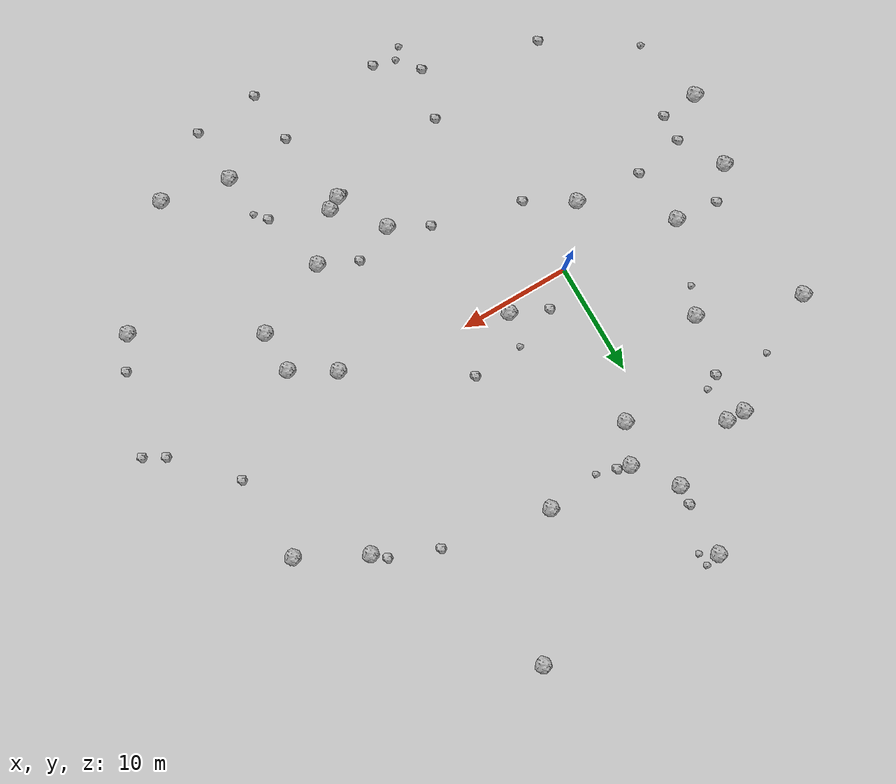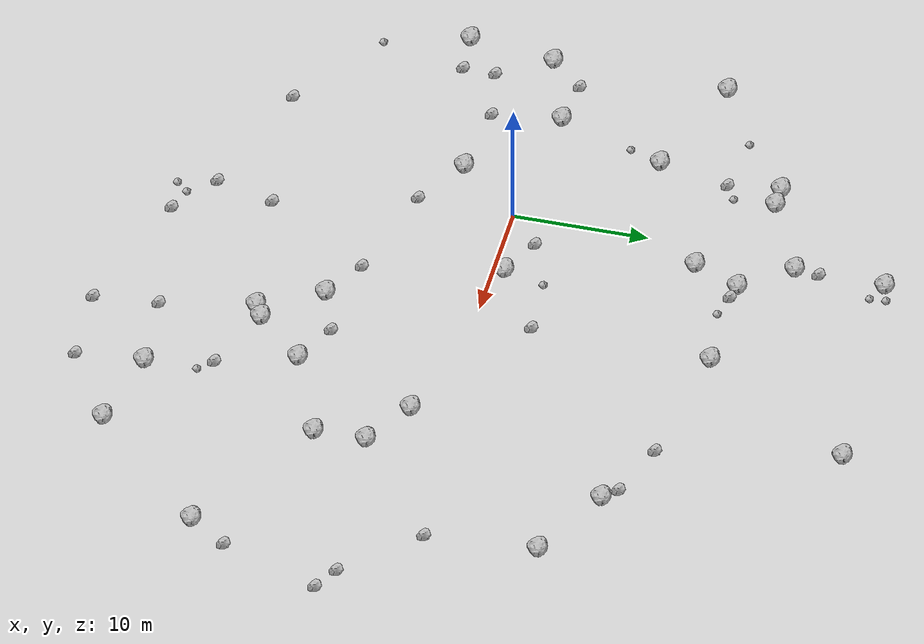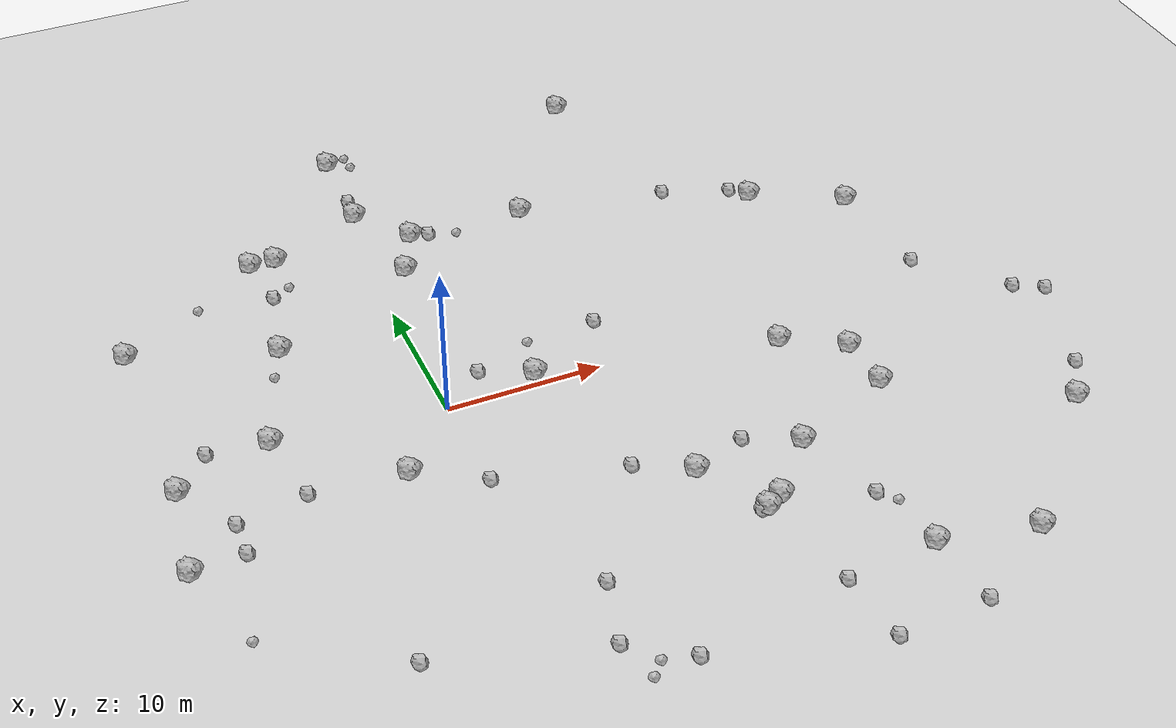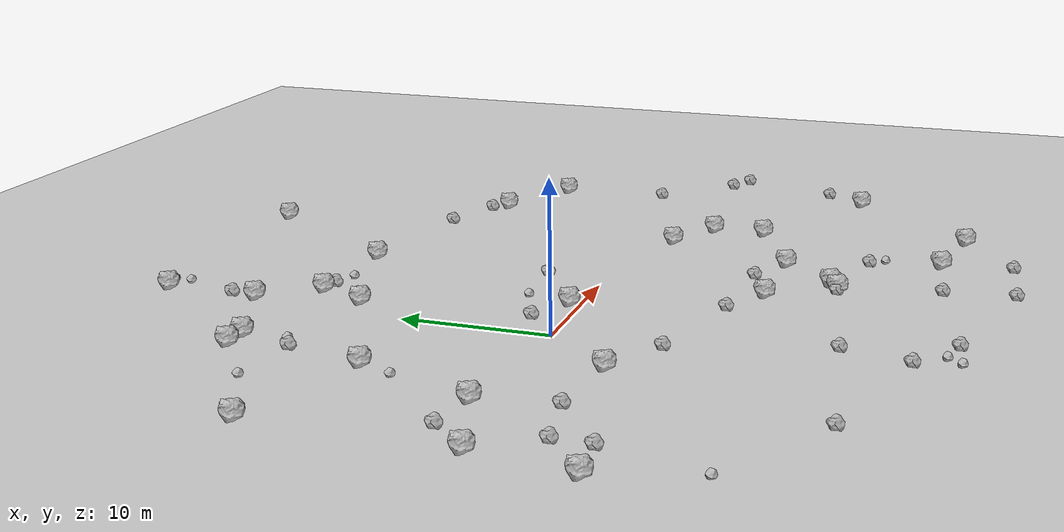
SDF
<sdf version="1.6">
 <world name="default">
  <include><uri>model://custom_ground</uri></include>
  <include><uri>model://sun</uri></include>
  <model name="rock1_0_0">
   <include><uri>model://rock1</uri><pose>3.8045434696196914 17.351324135746587 0.5 0 0 0</pose></include>
  </model>
  <model name="rock1_0_1">
   <include><uri>model://rock1</uri><pose>-3.976488632449062 -4.624608046511085 0.5 0 0 0</pose></include>
  </model>
  <model name="rock1_0_2">
   <include><uri>model://rock1</uri><pose>11.55652120269436 17.069664309525564 0.5 0 0 0</pose></include>
  </model>
  <model name="rock1_0_3">
   <include><uri>model://rock1</uri><pose>26.696960720430965 12.688559223585848 0.5 0 0 0</pose></include>
  </model>
  <model name="rock1_0_4">
   <include><uri>model://rock1</uri><pose>13.786341232884375 -15.468379948048705 0.5 0 0 0</pose></include>
  </model>
  <model name="rock1_0_5">
   <include><uri>model://rock1</uri><pose>14.90619966962199 -14.832727870366885 0.5 0 0 0</pose></include>
  </model>
  <model name="rock1_0_6">
   <include><uri>model://rock1</uri><pose>35.34807512818167 -14.194938023407197 0.5 0 0 0</pose></include>
  </model>
  <model name="rock1_0_7">
   <include><uri>model://rock1</uri><pose>-16.762229871484504 -0.9702952305546901 0.5 0 0 0</pose></include>
  </model>
  <model name="rock1_0_8">
   <include><uri>model://rock1</uri><pose>32.510787953866235 9.577859321746274 0.5 0 0 0</pose></include>
  </model>
  <model name="rock1_0_9">
   <include><uri>model://rock1</uri><pose>-7.665158341062368 9.148186438186173 0.5 0 0 0</pose></include>
  </model>
  <model name="rock1_0_10">
   <include><uri>model://rock1</uri><pose>-10.643128851662098 1.1007727395189129 0.5 0 0 0</pose></include>
  </model>
  <model name="rock1_0_11">
   <include><uri>model://rock1</uri><pose>-6.9607342781269 18.28509876694723 0.5 0 0 0</pose></include>
  </model>
  <model name="rock1_0_12">
   <include><uri>model://rock1</uri><pose>11.376963051131337 -11.007531407228694 0.5 0 0 0</pose></include>
  </model>
  <model name="rock1_0_13">
   <include><uri>model://rock1</uri><pose>18.245747287811454 -11.20185123404583 0.5 0 0 0</pose></include>
  </model>
  <model name="rock1_0_14">
   <include><uri>model://rock1</uri><pose>21.11028309529045 -21.652207632081094 0.5 0 0 0</pose></include>
  </model>
  <model name="rock1_0_15">
   <include><uri>model://rock1</uri><pose>18.78694139651263 28.01902566603456 0.5 0 0 0</pose></include>
  </model>
  <model name="rock1_0_16">
   <include><uri>model://rock1</uri><pose>2.2735610057466076 13.93864367170724 0.5 0 0 0</pose></include>
  </model>
  <model name="rock1_0_17">
   <include><uri>model://rock1</uri><pose>1.0628254207547236 20.970006711962185 0.5 0 0 0</pose></include>
  </model>
  <model name="rock1_0_18">
   <include><uri>model://rock1</uri><pose>6.064554483647978 0.8060660999381213 0.5 0 0 0</pose></include>
  </model>
  <model name="rock1_0_19">
   <include><uri>model://rock1</uri><pose>-5.27657413917729 18.229199491148535 0.5 0 0 0</pose></include>
  </model>
  <model name="rock1_0_20">
   <include><uri>model://rock1</uri><pose>21.287310065003233 -2.2464809159553916 0.5 0 0 0</pose></include>
  </model>
  <model name="rock1_0_21">
   <include><uri>model://rock1</uri><pose>1.252521747618374 27.557284686466552 0.5 0 0 0</pose></include>
  </model>
  <model name="rock1_0_22">
   <include><uri>model://rock1</uri><pose>27.21910487794426 -22.896482615510934 0.5 0 0 0</pose></include>
  </model>
  <model name="rock1_0_23">
   <include><uri>model://rock1</uri><pose>25.11424630611905 -8.23957948340589 0.5 0 0 0</pose></include>
  </model>
  <model name="rock1_0_24">
   <include><uri>model://rock1</uri><pose>25.02783431166965 -4.498878150979756 0.5 0 0 0</pose></include>
  </model>
  <model name="rock1_0_25">
   <include><uri>model://rock1</uri><pose>-17.733158886717213 -7.551293035537768 0.5 0 0 0</pose></include>
  </model>
  <model name="rock1_0_26">
   <include><uri>model://rock1</uri><pose>-16.646853796934494 12.2529617878346 0.5 0 0 0</pose></include>
  </model>
  <model name="rock2_0_0">
   <include><uri>model://rock2</uri><pose>1.7174081306215783 -21.639568211354778 0.3 0 0 0</pose></include>
  </model>
  <model name="rock2_0_1">
   <include><uri>model://rock2</uri><pose>21.27879759628778 15.305097346258513 0.3 0 0 0</pose></include>
  </model>
  <model name="rock2_0_2">
   <include><uri>model://rock2</uri><pose>15.588164283873539 -26.99316443540278 0.3 0 0 0</pose></include>
  </model>
  <model name="rock2_0_3">
   <include><uri>model://rock2</uri><pose>13.288594769338445 -15.48705388963626 0.3 0 0 0</pose></include>
  </model>
  <model name="rock2_0_4">
   <include><uri>model://rock2</uri><pose>15.114348207889229 -22.253335658589723 0.3 0 0 0</pose></include>
  </model>
  <model name="rock2_0_5">
   <include><uri>model://rock2</uri><pose>33.03203340092562 1.7290604279094062 0.3 0 0 0</pose></include>
  </model>
  <model name="rock2_0_6">
   <include><uri>model://rock2</uri><pose>21.470650093407222 -26.56450469514995 0.3 0 0 0</pose></include>
  </model>
  <model name="rock2_0_7">
   <include><uri>model://rock2</uri><pose>4.91474434177168 17.081404619136066 0.3 0 0 0</pose></include>
  </model>
  <model name="rock2_0_8">
   <include><uri>model://rock2</uri><pose>37.06323275518405 -11.389708964347399 0.3 0 0 0</pose></include>
  </model>
  <model name="rock2_0_9">
   <include><uri>model://rock2</uri><pose>2.8386917544996706 2.32544915256355 0.3 0 0 0</pose></include>
  </model>
  <model name="rock2_0_10">
   <include><uri>model://rock2</uri><pose>-14.41645054304514 -4.816949751562277 0.3 0 0 0</pose></include>
  </model>
  <model name="rock2_0_11">
   <include><uri>model://rock2</uri><pose>0.062494436806133535 -7.031599284485701 0.3 0 0 0</pose></include>
  </model>
  <model name="rock2_0_12">
   <include><uri>model://rock2</uri><pose>1.136232632607122 22.76787955329445 0.3 0 0 0</pose></include>
  </model>
  <model name="rock2_0_13">
   <include><uri>model://rock2</uri><pose>5.252303429433031 -24.104071772358786 0.3 0 0 0</pose></include>
  </model>
  <model name="rock2_0_14">
   <include><uri>model://rock2</uri><pose>-14.487152391609118 1.5786134675320405 0.3 0 0 0</pose></include>
  </model>
  <model name="rock2_0_15">
   <include><uri>model://rock2</uri><pose>8.008608175824513 -9.168432203266239 0.3 0 0 0</pose></include>
  </model>
  <model name="rock2_0_16">
   <include><uri>model://rock2</uri><pose>11.32976871381565 4.100525088918239 0.3 0 0 0</pose></include>
  </model>
  <model name="rock2_0_17">
   <include><uri>model://rock2</uri><pose>25.60045474019781 13.705765755030022 0.3 0 0 0</pose></include>
  </model>
  <model name="rock2_0_18">
   <include><uri>model://rock2</uri><pose>14.900492650213756 -9.630991838835428 0.3 0 0 0</pose></include>
  </model>
  <model name="rock2_0_19">
   <include><uri>model://rock2</uri><pose>-9.987863982449268 -4.019426401484505 0.3 0 0 0</pose></include>
  </model>
  <model name="rock2_0_20">
   <include><uri>model://rock2</uri><pose>-8.420865494883877 -18.691552369575692 0.3 0 0 0</pose></include>
  </model>
  <model name="rock2_0_21">
   <include><uri>model://rock2</uri><pose>-6.569870950592874 14.447162049023788 0.3 0 0 0</pose></include>
  </model>
  <model name="rock2_0_22">
   <include><uri>model://rock2</uri><pose>19.947017476269465 -16.808944370218057 0.3 0 0 0</pose></include>
  </model>
  <model name="rock2_0_23">
   <include><uri>model://rock2</uri><pose>-14.488412720358138 -7.284083058440789 0.3 0 0 0</pose></include>
  </model>
  <model name="rock2_0_24">
   <include><uri>model://rock2</uri><pose>2.9287895169486973 -17.199780521790803 0.3 0 0 0</pose></include>
  </model>
  <model name="rock2_0_25">
   <include><uri>model://rock2</uri><pose>37.662391992678195 -3.249237462348372 0.3 0 0 0</pose></include>
  </model>
  <model name="rock2_0_26">
   <include><uri>model://rock2</uri><pose>39.47529828380392 -4.280047330851765 0.3 0 0 0</pose></include>
  </model>
  <model name="rock3_0_0">
   <include><uri>model://rock3</uri><pose>6.711916135207659 3.8279733502093904 0.2 0 0 0</pose></include>
  </model>
  <model name="rock3_0_1">
   <include><uri>model://rock3</uri><pose>-16.038695205809695 -13.789994399857417 0.2 0 0 0</pose></include>
  </model>
  <model name="rock3_0_2">
   <include><uri>model://rock3</uri><pose>3.262938108446381 -23.560145180377017 0.2 0 0 0</pose></include>
  </model>
  <model name="rock3_0_3">
   <include><uri>model://rock3</uri><pose>-11.361445137253277 15.03748853373542 0.2 0 0 0</pose></include>
  </model>
  <model name="rock3_0_4">
   <include><uri>model://rock3</uri><pose>2.509164629949339 27.89971112531226 0.2 0 0 0</pose></include>
  </model>
  <model name="rock3_0_5">
   <include><uri>model://rock3</uri><pose>-8.770937807183415 6.7343373540365405 0.2 0 0 0</pose></include>
  </model>
  <model name="rock3_0_6">
   <include><uri>model://rock3</uri><pose>2.5984802924547488 26.73247101775727 0.2 0 0 0</pose></include>
  </model>
  <model name="rock3_0_7">
   <include><uri>model://rock3</uri><pose>6.697028036166579 16.53530980398223 0.2 0 0 0</pose></include>
  </model>
  <model name="rock3_0_8">
   <include><uri>model://rock3</uri><pose>-5.321486271432832 15.139209935361684 0.2 0 0 0</pose></include>
  </model>
  <model name="rock3_0_9">
   <include><uri>model://rock3</uri><pose>2.437311870701997 -24.482324498612954 0.2 0 0 0</pose></include>
  </model>
  <model name="rock3_0_10">
   <include><uri>model://rock3</uri><pose>20.84346778148231 -17.8642485614278 0.2 0 0 0</pose></include>
  </model>
 </world>
</sdf>
